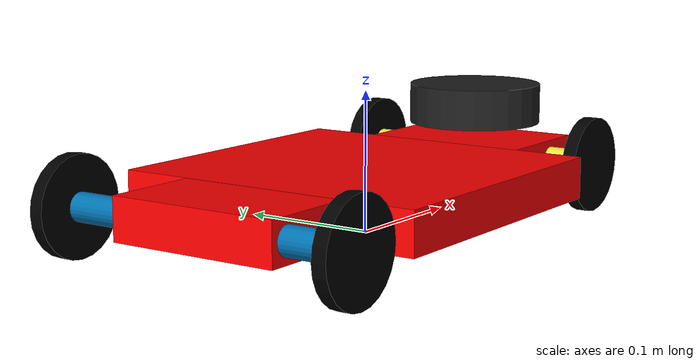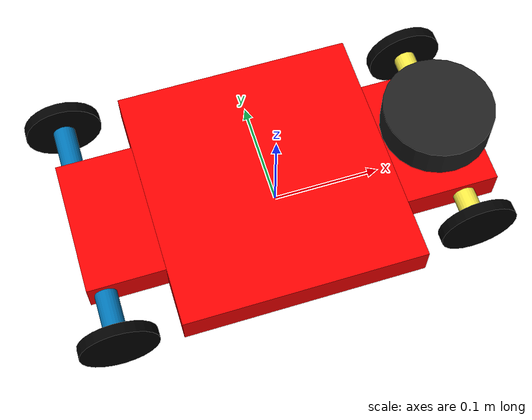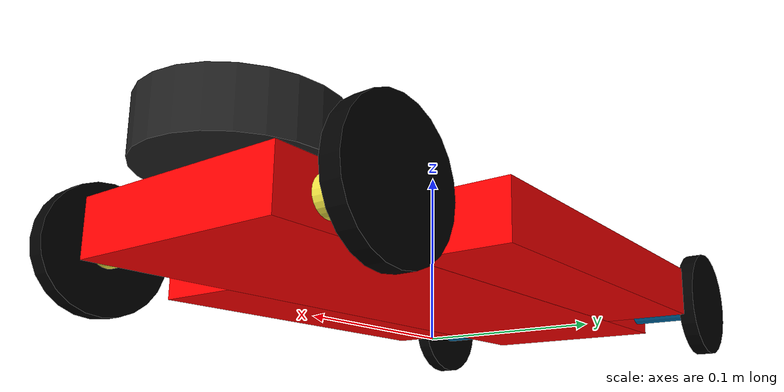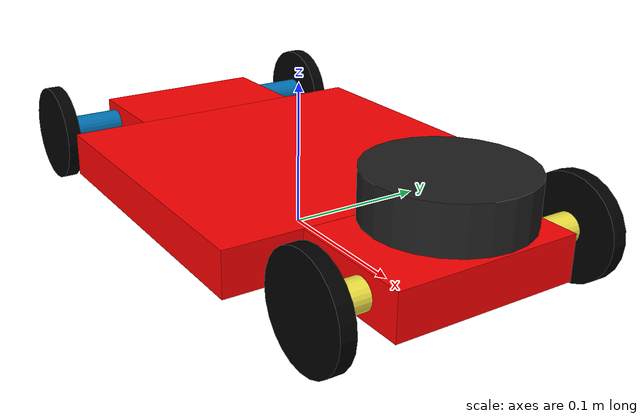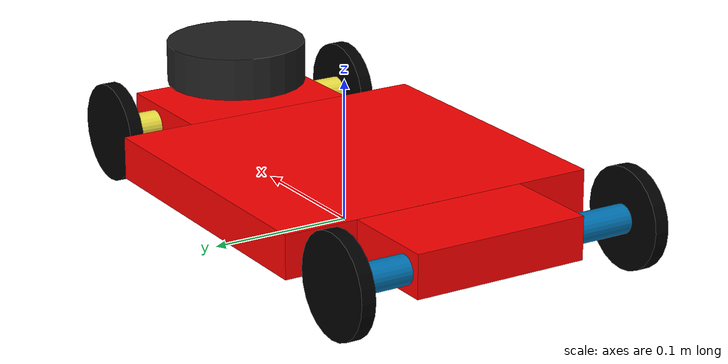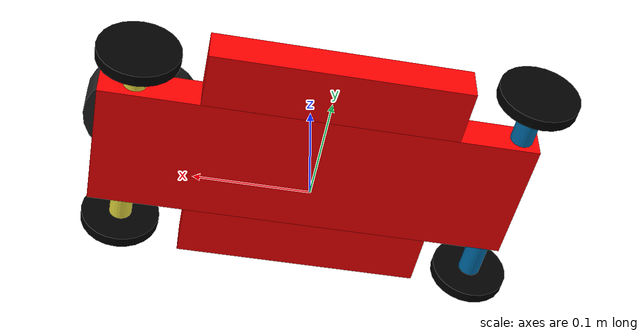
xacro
<?xml version="1.0"?>
<robot name="bolid" xmlns:xacro="http://www.ros.org/wiki/xacro">

  <xacro:property name="wheel_radius" value="0.035"/>
  <xacro:property name="wheel_width" value="0.010"/>
  <xacro:property name="chassis_length" value="0.375"/>
  <xacro:property name="chassis_width" value="0.125"/>
  <xacro:property name="chassis_height" value="0.03"/>

  <xacro:property name="max_steering_angle" value="0.6108" />
  <xacro:property name="max_steering_angular_velocity" value="20.0" />
  <xacro:property name="max_steering_effort" value="200.0" />
  <xacro:property name="max_wheel_angular_velocity" value="100.0"/>
  <xacro:property name="max_effort" value="30.0" />

  <xacro:macro name="box_inertia" params="m l w h xyz rpy">
      <inertial>
          <origin xyz="${xyz}" rpy="${rpy}"/>
          <mass value="${m}"/>
          <inertia ixx="${(1/12) * m * (w*w + h*h)}" ixy="0.0" ixz="0.0"
                   iyy="${(1/12) * m * (l*l + h*h)}" iyz="0.0"
                   izz="${(1/12) * m * (l*l + w*w)}"/>
      </inertial>
  </xacro:macro>

  <xacro:macro name="cylinder_inertia" params="m r h xyz rpy">
      <inertial>
          <origin xyz="${xyz}" rpy="${rpy}"/>
          <mass value="${m}"/>
          <inertia ixx="${(1/12) * m * (3*r*r + h*h)}" ixy="0.0" ixz="0.0"
                   iyy="${(1/12) * m * (3*r*r + h*h)}" iyz="0.0"
                   izz="${(1/2) * m * r*r}"/>
      </inertial>
  </xacro:macro>

  <xacro:macro name="steering_inertia" params="">
      <inertial>
        <mass value="0.1"/>
        <inertia ixx="1e-3" ixy="0.0" ixz="0.0" iyy="1e-3" iyz="0.0" izz="1e-3"/>
      </inertial>
  </xacro:macro>

  <material name="red"> <color rgba="1 0 0 1"/> </material>
  <material name="black"> <color rgba="0 0 0 1"/> </material>

  <link name="base_footprint"/>

  <link name="base_link">
      <visual>
          <geometry>
              <box size="${chassis_length} ${chassis_width} ${chassis_height}"/>
          </geometry>
          <material name="red"/>
      </visual>
      <collision>
          <geometry>
              <box size="${chassis_length} ${chassis_width} ${chassis_height}"/>
          </geometry>
      </collision>
      <xacro:box_inertia m="2" l="${chassis_length}" w="${chassis_width}" h="${chassis_height}" xyz="0 0 0" rpy="0 0 0"/>
  </link>

  <joint name="base_footprint_base_joint" type="fixed">
      <parent link="base_footprint"/>
      <child link="base_link"/>
      <origin xyz="0 0 ${wheel_radius}" rpy="0 0 0"/>
  </joint>

  <link name="platform_link">
      <visual>
          <geometry> <box size="0.22 0.23 0.03"/> </geometry>
          <material name="red"/>
      </visual>
      <collision>
          <geometry> <box size="0.22 0.23 0.03"/> </geometry>
      </collision>
      <xacro:box_inertia m="1.5" l="0.22" w="0.23" h="0.03" xyz="0 0 0" rpy="0 0 0"/>
  </link>

  <joint name="base_platform_joint" type="fixed">
      <parent link="base_link"/>
      <child link="platform_link"/>
      <origin xyz="-0.0075 0 0.0001" rpy="0 0 0"/>
  </joint>

  <xacro:macro name="wheel_bar" params="prefix x_off length">
      <link name="${prefix}_wheel_bar">
          <visual>
              <geometry> <cylinder radius="0.01" length="${length}"/> </geometry>
              <origin xyz="0.0 0.0 0.0" rpy="-1.57 0.0 0.0"/>
          </visual>
          <xacro:cylinder_inertia m="0.05" r="0.01" h="${length}" xyz="0 0 0" rpy="-1.57 0 0"/>
      </link>
      <joint name="base_${prefix}_wheel_bar" type="fixed">
          <parent link="base_link"/>
          <child link="${prefix}_wheel_bar"/>
          <origin xyz="${x_off} 0.0 0.0"/>
      </joint>
  </xacro:macro>

  <xacro:wheel_bar prefix="front" x_off="0.1575" length="0.190"/>
  <xacro:wheel_bar prefix="rear" x_off="-0.1725" length="0.220"/>

  <xacro:macro name="front_wheel" params="prefix x_off y_off">
      <link name="${prefix}_steering_link">
          <xacro:steering_inertia/>
      </link>

      <joint name="${prefix}_steering_joint" type="revolute">
          <parent link="base_link"/>
          <child link="${prefix}_steering_link"/>
          <origin xyz="${x_off} ${y_off} 0" rpy="0 0 0"/>
          <axis xyz="0 0 1"/>
          <limit effort="${max_steering_effort}" lower="${-max_steering_angle}" upper="${max_steering_angle}" velocity="${max_steering_angular_velocity}"/>
      </joint>

      <link name="${prefix}_wheel_link">
          <visual>
              <geometry> <cylinder radius="${wheel_radius}" length="${wheel_width}"/> </geometry>
              <origin xyz="0 0 0" rpy="1.5708 0 0"/>
              <material name="black"/>
          </visual>
          <collision>
              <geometry> <sphere radius="${wheel_radius}"/> </geometry>
              <origin xyz="0 0 0" rpy="0 0 0"/>
          </collision>
           <xacro:cylinder_inertia m="0.2" r="${wheel_radius}" h="${wheel_width}" xyz="0 0 0" rpy="1.5708 0 0"/>
      </link>

      <joint name="${prefix}_wheel_joint" type="continuous">
          <parent link="${prefix}_steering_link"/>
          <child link="${prefix}_wheel_link"/>
          <origin xyz="0 0 0" rpy="0 0 0"/>
          <axis xyz="0 1 0"/>
          <limit effort="${max_effort}" velocity="${max_wheel_angular_velocity}"/>
      </joint>

      <gazebo reference="${prefix}_wheel_link">
          <mu1>1.0</mu1>
          <mu2>0.85</mu2>
          <fdir1>1 0 0</fdir1>
          <kp>10000000.0</kp>
          <kd>1.0</kd>
          <minDepth>0.001</minDepth>
          <material>Gazebo/Black</material>
      </gazebo>
  </xacro:macro>

  <xacro:front_wheel prefix="front_left"  x_off="0.1575" y_off="0.095"/>
  <xacro:front_wheel prefix="front_right" x_off="0.1575" y_off="-0.095"/>

  <xacro:macro name="rear_wheel" params="prefix x_off y_off">
      <link name="${prefix}_wheel_link">
          <visual>
              <geometry> <cylinder radius="${wheel_radius}" length="${wheel_width}"/> </geometry>
              <origin xyz="0 0 0" rpy="1.5708 0 0"/>
              <material name="black"/>
          </visual>
          <collision>
              <geometry> <sphere radius="${wheel_radius}"/> </geometry>
              <origin xyz="0 0 0" rpy="0 0 0"/>
          </collision>
           <xacro:cylinder_inertia m="0.2" r="${wheel_radius}" h="${wheel_width}" xyz="0 0 0" rpy="1.5708 0 0"/>
      </link>

      <joint name="${prefix}_wheel_joint" type="continuous">
          <parent link="base_link"/>
          <child link="${prefix}_wheel_link"/>
          <origin xyz="${x_off} ${y_off} 0" rpy="0 0 0"/>
          <axis xyz="0 1 0"/>
          <limit effort="${max_effort}" velocity="${max_wheel_angular_velocity}"/>
      </joint>

      <gazebo reference="${prefix}_wheel_link">
          <mu1>1.0</mu1>
          <mu2>0.85</mu2>
          <fdir1>1 0 0</fdir1>
          <kp>10000000.0</kp>
          <kd>1.0</kd>
          <minDepth>0.001</minDepth>
          <material>Gazebo/Black</material>
      </gazebo>
  </xacro:macro>

  <xacro:rear_wheel prefix="rear_left"   x_off="-0.1725" y_off="0.110"/>
  <xacro:rear_wheel prefix="rear_right"  x_off="-0.1725" y_off="-0.110"/>

  <gazebo reference="base_link"><material>Gazebo/Red</material></gazebo>
  <gazebo reference="platform_link"><material>Gazebo/Red</material></gazebo>

  <ros2_control name="control" type="system">
    <hardware>
      <plugin>gz_ros2_control/GazeboSimSystem</plugin>
    </hardware>

    <joint name="front_left_steering_joint">
      <command_interface name="position">
        <param name="min">${-max_steering_angle}</param>
        <param name="max">${max_steering_angle}</param>
      </command_interface>
      <state_interface name="position"/>
      <state_interface name="velocity"/>
      <state_interface name="effort"/>
    </joint>

    <joint name="front_right_steering_joint">
      <command_interface name="position">
        <param name="min">${-max_steering_angle}</param>
        <param name="max">${max_steering_angle}</param>
      </command_interface>
      <state_interface name="position"/>
      <state_interface name="velocity"/>
      <state_interface name="effort"/>
    </joint>

    <joint name="rear_left_wheel_joint">
      <command_interface name="velocity">
        <param name="min">${-max_wheel_angular_velocity}</param>
        <param name="max">${max_wheel_angular_velocity}</param>
      </command_interface>
      <state_interface name="position"/>
      <state_interface name="velocity"/>
      <state_interface name="effort"/>
    </joint>

    <joint name="rear_right_wheel_joint">
      <command_interface name="velocity">
        <param name="min">${-max_wheel_angular_velocity}</param>
        <param name="max">${max_wheel_angular_velocity}</param>
      </command_interface>
      <state_interface name="position"/>
      <state_interface name="velocity"/>
      <state_interface name="effort"/>
    </joint>
  </ros2_control>

  <gazebo>
    <plugin filename="gz-sim-joint-state-publisher-system" name="gz::sim::systems::JointStatePublisher">
      <topic>joint_states</topic>
      <joint_name>front_left_steering_joint</joint_name>
      <joint_name>front_right_steering_joint</joint_name>
      <joint_name>front_left_wheel_joint</joint_name>
      <joint_name>front_right_wheel_joint</joint_name>
      <joint_name>rear_left_wheel_joint</joint_name>
      <joint_name>rear_right_wheel_joint</joint_name>
    </plugin>

    <plugin filename="gz_ros2_control-system" name="gz_ros2_control::GazeboSimROS2ControlPlugin">
      <parameters>$(find gazebo_ackermann_steering_vehicle)/config/gz_ros2_control.yaml</parameters>

      <ros>
        <remapping>/ackermann_steering_controller/tf_odometry:=/tf</remapping>
      </ros>
    </plugin>
  </gazebo>

  <xacro:include filename="ldiar.xacro"/>
  <xacro:include filename="imu.xacro"/>

</robot>

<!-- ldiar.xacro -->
<robot xmlns:xacro="http://www.ros.org/wiki/xacro">
    <link name="lidar_link">
        <visual>
            <geometry>
                <cylinder radius="0.05" length="0.03"/>
            </geometry>
            <origin xyz="0.0 0.0 0.0" rpy="0.0 0.0 0.0"/>
        </visual>
        <collision>
            <geometry>
                <cylinder radius="0.05" length="0.03"/>
            </geometry>
        </collision>
        <xacro:cylinder_inertia m="0.1" r="0.05" h="0.03" xyz="0.0 0.0 0.0" rpy="0.0 0.0 0.0"/>
    </link>

    <joint name="base_lidar_joint" type="fixed">
        <parent link="base_link"/>
        <child link="lidar_link"/>
        <origin xyz="0.15 0.0 0.04" rpy="0.0 0.0 0.0"/>
    </joint>

    <gazebo>
        <plugin filename="gz-sim-sensors-system" name="gz::sim::systems::Sensors">
            <render_engine>ogre2</render_engine>
        </plugin>
    </gazebo>

    <gazebo reference="lidar_link">
        <material>
            Gazebo/Black
        </material>

        <sensor name="gpu_lidar" type="gpu_lidar">
            <gz_frame_id>lidar_link</gz_frame_id>
            <update_rate>10</update_rate>
            <topic>scan</topic>

            <lidar>
              <scan>
                <horizontal>
                  <samples>720</samples>
                  <resolution>1</resolution>
                  <min_angle>-3.14</min_angle>
                  <max_angle>3.14</max_angle>
                </horizontal>
              </scan>

              <range>
                <min>0.01</min>
                <max>12.0</max>
                <resolution>0.005</resolution>
              </range>

              <noise>
                <type>gaussian</type>
                <mean>0.0</mean>
                <stddev>0.001</stddev>
              </noise>
            </lidar>

            <always_on>true</always_on>
            <visualize>true</visualize>
        </sensor>
    </gazebo>
</robot>

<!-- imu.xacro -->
<robot xmlns:xacro="http://www.ros.org/wiki/xacro">
    <link name="imu_link">
    <xacro:cylinder_inertia m="0.01" r="0.01" h="0.01" xyz="0 0 0" rpy="0 0 0"/>
    </link>

    <joint name="imu_joint" type="fixed">
    <parent link="base_link"/>
    <child link="imu_link"/>
    <origin xyz="0 0 0" rpy="0 0 0"/>
    </joint>

    <gazebo reference="imu_link">
        <sensor name="imu_sensor" type="imu">
            <always_on>1</always_on>
            <update_rate>50</update_rate>
            <visualize>true</visualize>
            <topic>imu</topic>
            <gz_frame_id>imu_link</gz_frame_id>
            <plugin filename="gz-sim-imu-system" name="gz::sim::systems::Imu">
            </plugin>
        </sensor>
    </gazebo>
</robot>
